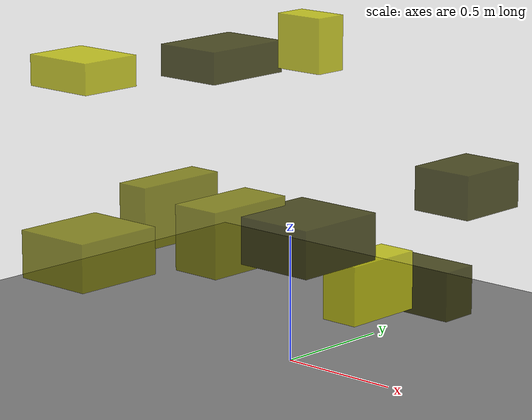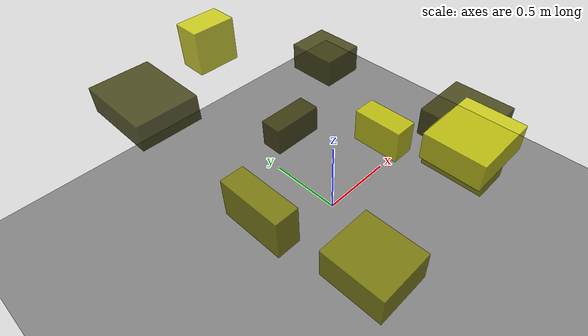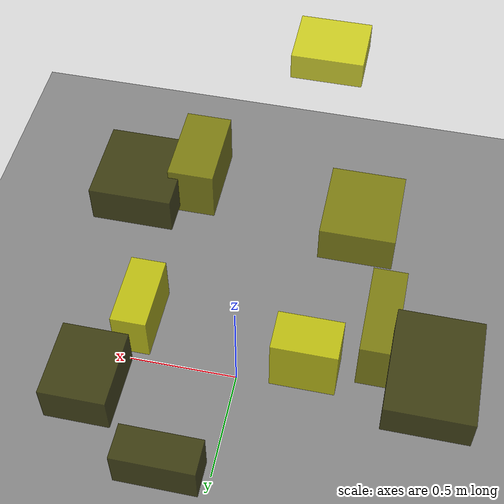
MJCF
<?xml version="1.0"?>
<mujoco model="obstacle_scene">
  <compiler angle="radian" coordinate="local"/>
  <option timestep="0.001" gravity="0 0 -9.81"/>

  <asset>
    <material name="obstacle_mat" rgba="0.8 0.8 0.0 0.8"/>
    <material name="ground_mat" rgba="0.5 0.5 0.5 1"/>
  </asset>

  <worldbody>
    <!-- Ground plane -->
    <geom name="ground" type="plane" size="3 3 0.1" material="ground_mat"/>

    <!-- Obstacles -->
    <body name="obstacle_0" pos="0.525189 -0.503215 0.682786">
      <geom name="obs_0" type="box" size="0.176600 0.184038 0.086500" rgba="0.2 0.2 0.0 0.8"/>
    </body>
    <body name="obstacle_1" pos="-0.439792 -0.648840 0.483752">
      <geom name="obs_1" type="box" size="0.166351 0.188411 0.093241" rgba="0.5 0.5 0.0 0.8"/>
    </body>
    <body name="obstacle_2" pos="-0.221035 -0.862840 1.240604">
      <geom name="obs_2" type="box" size="0.144763 0.123855 0.057265" rgba="0.8 0.8 0.0 0.8"/>
    </body>
    <body name="obstacle_3" pos="0.196231 0.575974 0.223697">
      <geom name="obs_3" type="box" size="0.181164 0.079583 0.099817" rgba="0.2 0.2 0.0 0.8"/>
    </body>
    <body name="obstacle_4" pos="-0.606706 -0.054444 0.521281">
      <geom name="obs_4" type="box" size="0.072159 0.203431 0.126738" rgba="0.5 0.5 0.0 0.8"/>
    </body>
    <body name="obstacle_5" pos="0.427983 -0.036978 0.395154">
      <geom name="obs_5" type="box" size="0.077474 0.165978 0.113047" rgba="0.8 0.8 0.0 0.8"/>
    </body>
    <body name="obstacle_6" pos="-0.802981 0.453885 1.039216">
      <geom name="obs_6" type="box" size="0.152904 0.202241 0.067029" rgba="0.2 0.2 0.0 0.8"/>
    </body>
    <body name="obstacle_7" pos="0.294000 -0.638427 0.685025">
      <geom name="obs_7" type="box" size="0.098532 0.179348 0.120289" rgba="0.5 0.5 0.0 0.8"/>
    </body>
    <body name="obstacle_8" pos="-0.372016 0.525127 1.150656">
      <geom name="obs_8" type="box" size="0.111993 0.071964 0.113226" rgba="0.8 0.8 0.0 0.8"/>
    </body>
    <body name="obstacle_9" pos="0.463664 0.501129 0.684913">
      <geom name="obs_9" type="box" size="0.130118 0.156028 0.086822" rgba="0.2 0.2 0.0 0.8"/>
    </body>
  </worldbody>
</mujoco>
